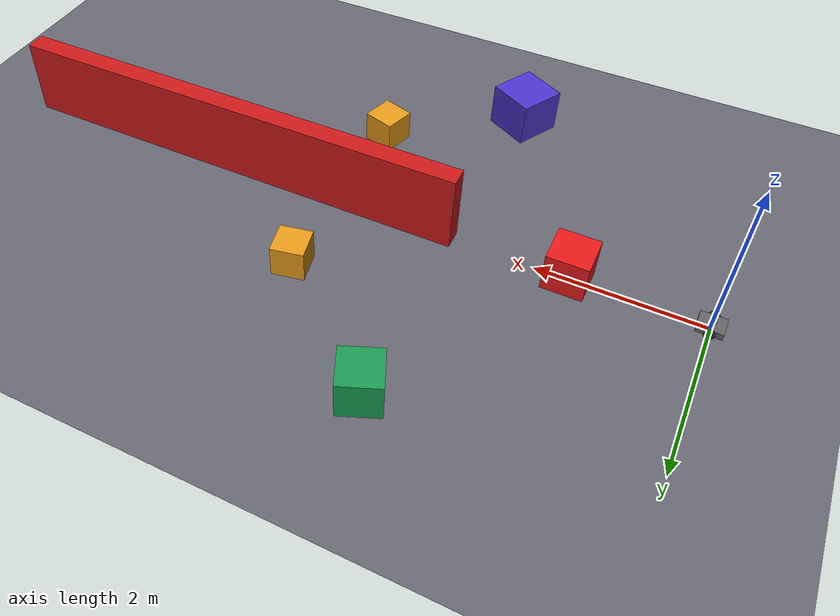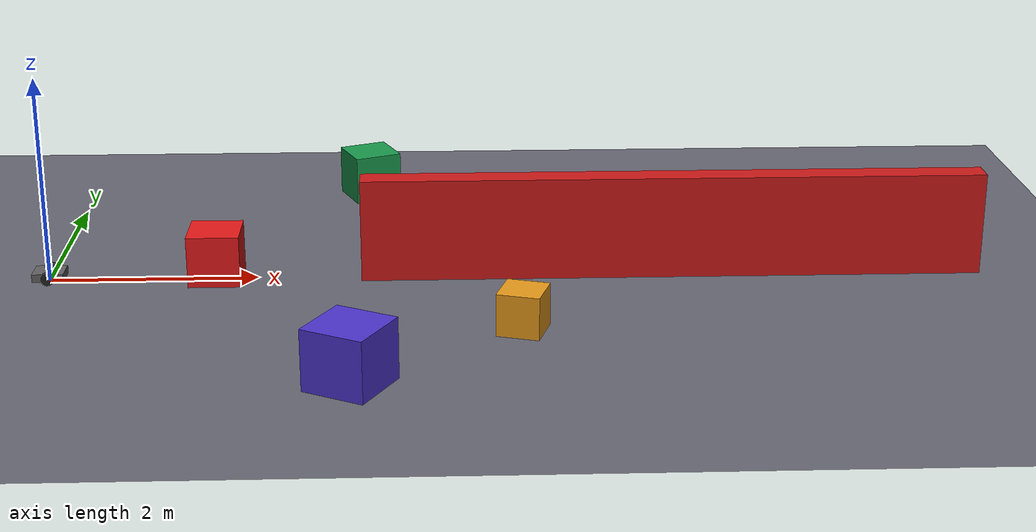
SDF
<?xml version="1.0" ?>
<sdf version="1.10">
  <world name="obstacle_world">
    <plugin filename="libgz-sim-sensors-system.so" name="gz::sim::systems::Sensors"/>
    <plugin filename="gz-sim-physics-system" name="gz::sim::systems::Physics"></plugin>
    <plugin filename="gz-sim-user-commands-system" name="gz::sim::systems::UserCommands"></plugin>
    <plugin filename="gz-sim-scene-broadcaster-system" name="gz::sim::systems::SceneBroadcaster"></plugin>

    <physics name="default_physics" type="dartsim">
      <max_step_size>0.001</max_step_size>
      <real_time_factor>1</real_time_factor>
      <real_time_update_rate>1000</real_time_update_rate>
      <gravity>0 0 -9.8</gravity>
    </physics>
    <scene>
      <ambient>0.6 0.6 0.6</ambient>
      <background>0.1 0.1 0.2</background>
      <shadows>false</shadows>
      <grid>true</grid>
    </scene>

    <!-- sun light -->
    <light type="directional" name="sun">
      <cast_shadows>false</cast_shadows>
      <pose>0 0 10 0 0 0</pose>
      <diffuse>1.0 1.0 1.0 1.0</diffuse>
      <specular>0.5 0.5 0.5 1.0</specular>
      <direction>-0.5 -0.2 -1.0</direction>
    </light>

    <!-- ground plane -->
    <model name="ground_plane">
      <static>true</static>
      <link name="link">
        <collision name="collision">
          <geometry>
            <plane>
              <normal>0 0 1</normal>
              <size>100 100</size>
            </plane>
          </geometry>
        </collision>
        <visual name="visual">
          <geometry>
            <plane>
              <normal>0 0 1</normal>
              <size>100 100</size>
            </plane>
          </geometry>
          <material>
            <ambient>0.4 0.4 0.45</ambient>
            <diffuse>0.4 0.4 0.45</diffuse>
          </material>
        </visual>
      </link>
    </model>

    <!-- Obstacle: wall in front of robot spawn point -->
    <model name="Box5">
      <static>true</static>
      <pose>1.6 0.0 0.25 0 0 0</pose>
      <link name="link">
        <collision name="collision">
          <geometry>
            <box>
              <size>0.5 0.5 0.5</size>
            </box>
          </geometry>
        </collision>
        <visual name="visual">
          <geometry>
            <box>
              <size>0.5 0.5 0.5</size>
            </box>
          </geometry>
          <material>
            <ambient>0.9 0.1 0.1</ambient>
            <diffuse>0.9 0.1 0.1</diffuse>
          </material>
        </visual>
      </link>
    </model>

    <model name="wall_center">
      <static>true</static>
      <pose>6.0 0.0 0.5 0 0 0</pose>
      <link name="link">
        <collision name="collision">
          <geometry>
            <box>
              <size>6.0 0.25 1.0</size>
            </box>
          </geometry>
        </collision>
        <visual name="visual">
          <material name="red_material">
            <ambient>0.8 0.1 0.1</ambient>
            <diffuse>0.8 0.1 0.1</diffuse>
          </material>
          <geometry>
            <box>
              <size>6.0 0.25 1.0</size>
            </box>
          </geometry>
        </visual>
      </link>
    </model>

    <!-- Blocks scattered in arena -->
    <model name="Box1">
      <static>true</static>
      <pose>3.0 2.5 0.25 0 0 0.4</pose>
      <link name="link">
        <collision name="collision">
          <geometry>
            <box>
              <size>0.5 0.5 0.5</size>
            </box>
          </geometry>
        </collision>
        <visual name="visual">
          <geometry>
            <box>
              <size>0.5 0.5 0.5</size>
            </box>
          </geometry>
          <material>
            <ambient>0.1 0.6 0.3</ambient>
            <diffuse>0.1 0.6 0.3</diffuse>
          </material>
        </visual>
      </link>
    </model>

    <model name="Box2">
      <static>true</static>
      <pose>3.0 -2.5 0.25 0 0 -0.5</pose>
      <link name="link">
        <collision name="collision">
          <geometry>
            <box>
              <size>0.6 0.6 0.6</size>
            </box>
          </geometry>
        </collision>
        <visual name="visual">
          <geometry>
            <box>
              <size>0.6 0.6 0.6</size>
            </box>
          </geometry>
          <material>
            <ambient>0.3 0.2 0.8</ambient>
            <diffuse>0.3 0.2 0.8</diffuse>
          </material>
        </visual>
      </link>
    </model>

    <model name="Box3">
      <static>true</static>
      <pose>4.5 1.2 0.2 0 0 0.2</pose>
      <link name="link">
        <collision name="collision">
          <geometry>
            <box>
              <size>0.4 0.4 0.4</size>
            </box>
          </geometry>
        </collision>
        <visual name="visual">
          <geometry>
            <box>
              <size>0.4 0.4 0.4</size>
            </box>
          </geometry>
          <material>
            <ambient>0.9 0.6 0.1</ambient>
            <diffuse>0.9 0.6 0.1</diffuse>
          </material>
        </visual>
      </link>
    </model>

    <model name="Box4">
      <static>true</static>
      <pose>4.5 -1.4 0.2 0 0 -0.3</pose>
      <link name="link">
        <collision name="collision">
          <geometry>
            <box>
              <size>0.4 0.4 0.4</size>
            </box>
          </geometry>
        </collision>
        <visual name="visual">
          <geometry>
            <box>
              <size>0.4 0.4 0.4</size>
            </box>
          </geometry>
          <material>
            <ambient>0.9 0.6 0.1</ambient>
            <diffuse>0.9 0.6 0.1</diffuse>
          </material>
        </visual>
      </link>
    </model>

    <!-- outer boundary walls -->
    <model name="Boundary_N">
      <static>true</static>
      <pose>0 10 0.5 0 0 0</pose>
      <link name="link">
        <collision name="collision">
          <geometry>
            <box>
              <size>20 0.2 1.0</size>
            </box>
          </geometry>
        </collision>
      </link>
    </model>
    <model name="Boundary_S">
      <static>true</static>
      <pose>0 -10 0.5 0 0 0</pose>
      <link name="link">
        <collision name="collision">
          <geometry>
            <box>
              <size>20 0.2 1.0</size>
            </box>
          </geometry>
        </collision>
      </link>
    </model>
    <model name="Boundary_E">
      <static>true</static>
      <pose>10 0 0.5 0 0 1.5707963</pose>
      <link name="link">
        <collision name="collision">
          <geometry>
            <box>
              <size>20 0.2 1.0</size>
            </box>
          </geometry>
        </collision>
      </link>
    </model>
    <model name="Boundary_W">
      <static>true</static>
      <pose>-10 0 0.5 0 0 1.5707963</pose>
      <link name="link">
        <collision name="collision">
          <geometry>
            <box>
              <size>20 0.2 1.0</size>
            </box>
          </geometry>
        </collision>
      </link>
    </model>
  <model name='basic_robot'>
    <pose>0 0 0.065 0 0 0</pose>
    <link name='base_link'>
      <inertial>
        <pose>-0.0025581395348837212 0 0.0024418604651162789 0 0 0</pose>
        <mass>2.1499999999999999</mass>
        <inertia>
          <ixx>0.020738430232558142</ixx>
          <ixy>0</ixy>
          <ixz>-0.0002059302325581396</ixz>
          <iyy>0.031329360465116272</iyy>
          <iyz>0</iyz>
          <izz>0.020790930232558139</izz>
        </inertia>
      </inertial>
      <collision name='base_link_collision'>
        <pose>0 0 0 0 0 0</pose>
        <geometry>
          <box>
            <size>0.29999999999999999 0.25 0.080000000000000002</size>
          </box>
        </geometry>
      </collision>
      <collision name='base_link_fixed_joint_lump__caster_link_collision_1'>
        <pose>-0.11 0 -0.035000000000000003 0 0 0</pose>
        <geometry>
          <sphere>
            <radius>0.029999999999999999</radius>
          </sphere>
        </geometry>
      </collision>
      <collision name='base_link_fixed_joint_lump__lidar_link_collision_2'>
        <pose>0 0 0.070000000000000007 0 0 0</pose>
        <geometry>
          <cylinder>
            <length>0.029999999999999999</length>
            <radius>0.040000000000000001</radius>
          </cylinder>
        </geometry>
        <surface>
          <contact>
            <ode/>
          </contact>
          <friction>
            <ode/>
          </friction>
        </surface>
      </collision>
      <visual name='base_link_visual'>
        <pose>0 0 0 0 0 0</pose>
        <geometry>
          <box>
            <size>0.29999999999999999 0.25 0.080000000000000002</size>
          </box>
        </geometry>
        <material>
          <diffuse>0.37500003 0.37500003 0.37500003 1</diffuse>
          <ambient>0.37500003 0.37500003 0.37500003 1</ambient>
        </material>
      </visual>
      <visual name='base_link_fixed_joint_lump__caster_link_visual_1'>
        <pose>-0.11 0 -0.035000000000000003 0 0 0</pose>
        <geometry>
          <sphere>
            <radius>0.029999999999999999</radius>
          </sphere>
        </geometry>
        <material>
          <diffuse>0.875 0.875 0.875 1</diffuse>
          <ambient>0.875 0.875 0.875 1</ambient>
        </material>
      </visual>
      <visual name='base_link_fixed_joint_lump__lidar_link_visual_2'>
        <pose>0 0 0.070000000000000007 0 0 0</pose>
        <geometry>
          <cylinder>
            <length>0.029999999999999999</length>
            <radius>0.040000000000000001</radius>
          </cylinder>
        </geometry>
        <material>
          <diffuse>0.125 0.37500003 1 1</diffuse>
          <ambient>0.125 0.37500003 1 1</ambient>
        </material>
      </visual>
      <sensor name='lidar_sensor' type='gpu_lidar'>
        <topic>/scan</topic>
        <update_rate>10</update_rate>
        <lidar>
          <scan>
            <horizontal>
              <samples>360</samples>
              <resolution>1</resolution>
              <min_angle>-3.1415926500000002</min_angle>
              <max_angle>3.1415926500000002</max_angle>
            </horizontal>
          </scan>
          <range>
            <min>0.10000000000000001</min>
            <max>10</max>
          </range>
          <noise>
            <mean>0</mean>
            <stddev>0.01</stddev>
            <type>gaussian</type>
          </noise>
        </lidar>
        <always_on>true</always_on>
        <visualize>true</visualize>
        <pose>0 0 0.070000000000000007 0 0 0</pose>
      </sensor>
    </link>
    <joint name='left_wheel_joint' type='revolute'>
      <pose relative_to='base_link'>0 0.14000000000000001 0 0 0 0</pose>
      <parent>base_link</parent>
      <child>left_wheel</child>
      <axis>
        <xyz>0 1 0</xyz>
        <limit>
          <lower>-inf</lower>
          <upper>inf</upper>
        </limit>
        <dynamics>
          <spring_reference>0</spring_reference>
          <spring_stiffness>0</spring_stiffness>
        </dynamics>
      </axis>
    </joint>
    <link name='left_wheel'>
      <pose relative_to='left_wheel_joint'>0 0 0 0 0 0</pose>
      <inertial>
        <pose>0 0 0 0 0 0</pose>
        <mass>0.14999999999999999</mass>
        <inertia>
          <ixx>0.00020000000000000001</ixx>
          <ixy>0</ixy>
          <ixz>0</ixz>
          <iyy>0.0001</iyy>
          <iyz>0</iyz>
          <izz>0.00020000000000000001</izz>
        </inertia>
      </inertial>
      <collision name='left_wheel_collision'>
        <pose>0 0 0 1.5707963000000003 0 0</pose>
        <geometry>
          <cylinder>
            <length>0.029999999999999999</length>
            <radius>0.065000000000000002</radius>
          </cylinder>
        </geometry>
      </collision>
      <visual name='left_wheel_visual'>
        <pose>0 0 0 1.5707963000000003 0 0</pose>
        <geometry>
          <cylinder>
            <length>0.029999999999999999</length>
            <radius>0.065000000000000002</radius>
          </cylinder>
        </geometry>
        <material>
          <diffuse>0.125 0.125 0.125 1</diffuse>
          <ambient>0.125 0.125 0.125 1</ambient>
        </material>
      </visual>
    </link>
    <joint name='right_wheel_joint' type='revolute'>
      <pose relative_to='base_link'>0 -0.14000000000000001 0 0 0 0</pose>
      <parent>base_link</parent>
      <child>right_wheel</child>
      <axis>
        <xyz>0 1 0</xyz>
        <limit>
          <lower>-inf</lower>
          <upper>inf</upper>
        </limit>
        <dynamics>
          <spring_reference>0</spring_reference>
          <spring_stiffness>0</spring_stiffness>
        </dynamics>
      </axis>
    </joint>
    <link name='right_wheel'>
      <pose relative_to='right_wheel_joint'>0 0 0 0 0 0</pose>
      <inertial>
        <pose>0 0 0 0 0 0</pose>
        <mass>0.14999999999999999</mass>
        <inertia>
          <ixx>0.00020000000000000001</ixx>
          <ixy>0</ixy>
          <ixz>0</ixz>
          <iyy>0.0001</iyy>
          <iyz>0</iyz>
          <izz>0.00020000000000000001</izz>
        </inertia>
      </inertial>
      <collision name='right_wheel_collision'>
        <pose>0 0 0 1.5707963000000003 0 0</pose>
        <geometry>
          <cylinder>
            <length>0.029999999999999999</length>
            <radius>0.065000000000000002</radius>
          </cylinder>
        </geometry>
      </collision>
      <visual name='right_wheel_visual'>
        <pose>0 0 0 1.5707963000000003 0 0</pose>
        <geometry>
          <cylinder>
            <length>0.029999999999999999</length>
            <radius>0.065000000000000002</radius>
          </cylinder>
        </geometry>
        <material>
          <diffuse>0.125 0.125 0.125 1</diffuse>
          <ambient>0.125 0.125 0.125 1</ambient>
        </material>
      </visual>
    </link>
    <plugin name='gz::sim::systems::DiffDrive' filename='libgz-sim-diff-drive-system.so'>
      <left_joint>left_wheel_joint</left_joint>
      <right_joint>right_wheel_joint</right_joint>
      <wheel_separation>0.28</wheel_separation>
      <wheel_radius>0.065</wheel_radius>
      <max_wheel_torque>5</max_wheel_torque>
      <max_wheel_acceleration>10</max_wheel_acceleration>
      <topic>/cmd_vel</topic>
    </plugin>
    <frame name='caster_joint' attached_to='base_link'>
      <pose>-0.11 0 -0.035000000000000003 0 0 0</pose>
    </frame>
    <frame name='caster_link' attached_to='caster_joint'>
      <pose>0 0 0 0 0 0</pose>
    </frame>
    <frame name='lidar_joint' attached_to='base_link'>
      <pose>0 0 0.070000000000000007 0 0 0</pose>
    </frame>
    <frame name='lidar_link' attached_to='lidar_joint'>
      <pose>0 0 0 0 0 0</pose>
    </frame>
  </model>
</world>
</sdf>
